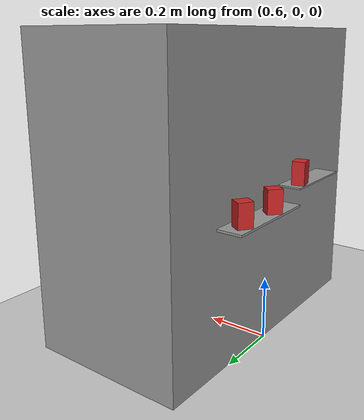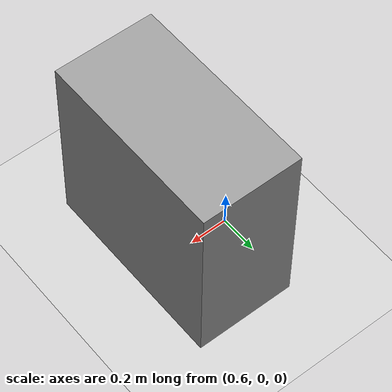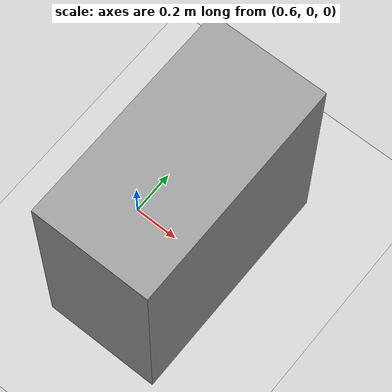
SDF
<sdf version="1.7">
 <world name="default">
  <light name="sun" type="directional">
   <pose>0 0 10 0 -0 0</pose>
   <diffuse>0.8 0.8 0.8 1</diffuse>
   <specular>0.2 0.2 0.2 1</specular>
   <attenuation>
    <range>1000</range>
    <constant>0.9</constant>
    <linear>0.01</linear>
    <quadratic>0.001</quadratic>
   </attenuation>
   <direction>-0.5 0.1 -0.9</direction>
   <spot><inner_angle>0</inner_angle><outer_angle>0</outer_angle><falloff>0</falloff></spot>
  </light>
  <model name="ground_plane">
   <static>1</static>
   <link name="link">
    <collision name="collision">
     <geometry><plane><normal>0 0 1</normal><size>100 100</size></plane></geometry>
     <surface>
      <friction>
       <ode><mu>1e+10</mu><mu2>1e+10</mu2><fdir1>0 0 0</fdir1><slip1>0</slip1><slip2>0</slip2></ode>
       <torsional>
        <coefficient>1</coefficient>
        <patch_radius>0</patch_radius>
        <surface_radius>0</surface_radius>
        <use_patch_radius>1</use_patch_radius>
        <ode><slip>0</slip></ode>
       </torsional>
      </friction>
      <bounce><restitution_coefficient>0</restitution_coefficient><threshold>1e+06</threshold></bounce>
      <contact>
       <collide_without_contact>0</collide_without_contact>
       <collide_without_contact_bitmask>1</collide_without_contact_bitmask>
       <collide_bitmask>1</collide_bitmask>
       <ode>
        <soft_cfm>0</soft_cfm>
        <soft_erp>0.2</soft_erp>
        <kp>1e+13</kp>
        <kd>1e+10</kd>
        <max_vel>0.01</max_vel>
        <min_depth>0</min_depth>
       </ode>
       <bullet>
        <split_impulse>1</split_impulse>
        <split_impulse_penetration_threshold>-0.01</split_impulse_penetration_threshold>
        <soft_cfm>0</soft_cfm>
        <soft_erp>0.2</soft_erp>
        <kp>1e+13</kp>
        <kd>1e+10</kd>
       </bullet>
      </contact>
     </surface>
    </collision>
    <visual name="visual">
     <cast_shadows>0</cast_shadows>
     <geometry><plane><normal>0 0 1</normal><size>100 100</size></plane></geometry>
     <material>
      <script><uri>file://media/materials/scripts/gazebo.material</uri><name>Gazebo/Grey</name></script>
     </material>
    </visual>
   </link>
  </model>
  <gravity>0 0 -9.8</gravity>
  <magnetic_field>6e-06 2.3e-05 -4.2e-05</magnetic_field>
  <atmosphere type="adiabatic"/>
  <physics type="ode">
   <max_step_size>0.001</max_step_size>
   <real_time_factor>1</real_time_factor>
   <real_time_update_rate>1000</real_time_update_rate>
  </physics>
  <scene><ambient>0.4 0.4 0.4 1</ambient><background>0.7 0.7 0.7 1</background><shadows>1</shadows></scene>
  <audio><device>default</device></audio>
  <spherical_coordinates>
   <surface_model>EARTH_WGS84</surface_model>
   <latitude_deg>0</latitude_deg>
   <longitude_deg>0</longitude_deg>
   <elevation>0</elevation>
   <heading_deg>0</heading_deg>
  </spherical_coordinates>
  <light name="user_spot_light_0" type="spot">
   <pose>1.99499 0.217782 1 0 -0 0</pose>
   <diffuse>0.5 0.5 0.5 1</diffuse>
   <specular>0.1 0.1 0.1 1</specular>
   <direction>0 0 -1</direction>
   <attenuation>
    <range>20</range>
    <constant>0.5</constant>
    <linear>0.01</linear>
    <quadratic>0.001</quadratic>
   </attenuation>
   <cast_shadows>0</cast_shadows>
   <spot><inner_angle>0.6</inner_angle><outer_angle>1</outer_angle><falloff>1</falloff></spot>
  </light>
  <model name="grasp_box">
   <link name="grasp_box_base_link">
    <inertial>
     <mass>0.5</mass>
     <inertia>
      <ixx>0.000133333</ixx>
      <ixy>0</ixy>
      <ixz>0</ixz>
      <iyy>0.000133333</iyy>
      <iyz>0</iyz>
      <izz>0.000133333</izz>
     </inertia>
    </inertial>
    <collision name="grasp_box_base_link_collision">
     <geometry><box><size>0.027545 0.0252691 37.5905</size></box></geometry>
     <surface>
      <contact><ode><kp>100000</kp><kd>100</kd></ode></contact>
      <friction><ode><mu>30</mu><mu2>30</mu2></ode></friction>
     </surface>
    </collision>
    <visual name="grasp_box_base_link_visual">
     <geometry><box><size>0.027545 0.0252691 37.5905</size></box></geometry>
     <material>
      <script><name>Gazebo/Red</name><uri>file://media/materials/scripts/gazebo.material</uri></script>
     </material>
    </visual>
   </link>
   <pose>-58.5261 88.5213 -5530.62 -1.57396 0.625441 -0.630015</pose>
  </model>
  <light name="user_spot_light_0_clone" type="spot">
   <pose>-0.182732 0.640576 2 0 -0 0</pose>
   <diffuse>0.498039 0.498039 0.498039 1</diffuse>
   <specular>0.0980392 0.0980392 0.0980392 1</specular>
   <direction>0 0 -1</direction>
   <attenuation>
    <range>20</range>
    <constant>0.5</constant>
    <linear>0.01</linear>
    <quadratic>0.001</quadratic>
   </attenuation>
   <cast_shadows>0</cast_shadows>
   <spot><inner_angle>0.6</inner_angle><outer_angle>1</outer_angle><falloff>1</falloff></spot>
  </light>
  <light name="user_spot_light_0_clone_clone" type="spot">
   <pose>-0.349547 -1.05565 2 0 -0 0</pose>
   <diffuse>0.494118 0.494118 0.494118 1</diffuse>
   <specular>0.0941176 0.0941176 0.0941176 1</specular>
   <direction>0 0 -1</direction>
   <attenuation>
    <range>20</range>
    <constant>0.5</constant>
    <linear>0.01</linear>
    <quadratic>0.001</quadratic>
   </attenuation>
   <cast_shadows>0</cast_shadows>
   <spot><inner_angle>0.6</inner_angle><outer_angle>1</outer_angle><falloff>1</falloff></spot>
  </light>
  <model name="grasp_box_clone">
   <link name="grasp_box_base_link">
    <inertial>
     <mass>0.5</mass>
     <inertia>
      <ixx>0.000133333</ixx>
      <ixy>0</ixy>
      <ixz>0</ixz>
      <iyy>0.000133333</iyy>
      <iyz>0</iyz>
      <izz>0.000133333</izz>
     </inertia>
    </inertial>
    <collision name="grasp_box_base_link_collision">
     <geometry><box><size>0.0415293 0.0762041 0.0470708</size></box></geometry>
     <surface>
      <contact><ode><kp>100000</kp><kd>100</kd></ode></contact>
      <friction><ode><mu>30</mu><mu2>30</mu2></ode></friction>
     </surface>
    </collision>
    <visual name="grasp_box_base_link_visual">
     <geometry><box><size>0.0415293 0.0762041 0.0470708</size></box></geometry>
     <material>
      <script><name>Gazebo/Red</name><uri>file://media/materials/scripts/gazebo.material</uri></script>
     </material>
    </visual>
   </link>
   <pose>0.550863 -0.11735 0.534119 1.5708 0 0.182981</pose>
  </model>
  <model name="wall_dual_done2">
   <link name="link">
    <inertial>
     <mass>1.66022</mass>
     <inertia>
      <ixx>0.0155201</ixx>
      <ixy>0</ixy>
      <ixz>0</ixz>
      <iyy>0.0162504</iyy>
      <iyz>0</iyz>
      <izz>0.0317568</izz>
     </inertia>
    </inertial>
    <pose>-0.034223 0.074592 -0.031042 0 -0 0</pose>
    <visual name="visual">
     <geometry><box><size>0.342648 0.334857 0.007025</size></box></geometry>
     <material>
      <script><name>Gazebo/Grey</name><uri>file://media/materials/scripts/gazebo.material</uri></script>
      <shader type="pixel"><normal_map>__default__</normal_map></shader>
      <emissive>0 0 0 1</emissive>
      <ambient>0.3 0.3 0.3 1</ambient>
      <diffuse>0.7 0.7 0.7 1</diffuse>
      <specular>0.01 0.01 0.01 1</specular>
     </material>
    </visual>
    <collision name="collision">
     <geometry><box><size>0.342648 0.334857 0.007025</size></box></geometry>
     <surface>
      <friction>
       <ode><mu>1</mu><mu2>1</mu2><fdir1>0 0 0</fdir1><slip1>0</slip1><slip2>0</slip2></ode>
       <torsional>
        <coefficient>1</coefficient>
        <patch_radius>0</patch_radius>
        <surface_radius>0</surface_radius>
        <use_patch_radius>1</use_patch_radius>
        <ode><slip>0</slip></ode>
       </torsional>
      </friction>
      <bounce><restitution_coefficient>0</restitution_coefficient><threshold>1e+06</threshold></bounce>
      <contact>
       <collide_without_contact>0</collide_without_contact>
       <collide_without_contact_bitmask>1</collide_without_contact_bitmask>
       <collide_bitmask>1</collide_bitmask>
       <ode>
        <soft_cfm>0</soft_cfm>
        <soft_erp>0.2</soft_erp>
        <kp>1e+13</kp>
        <kd>1</kd>
        <max_vel>0.01</max_vel>
        <min_depth>0</min_depth>
       </ode>
       <bullet>
        <split_impulse>1</split_impulse>
        <split_impulse_penetration_threshold>-0.01</split_impulse_penetration_threshold>
        <soft_cfm>0</soft_cfm>
        <soft_erp>0.2</soft_erp>
        <kp>1e+13</kp>
        <kd>1</kd>
       </bullet>
      </contact>
     </surface>
    </collision>
   </link>
   <link name="link_0">
    <inertial>
     <mass>12.7747</mass>
     <inertia><ixx>2.0783</ixx><ixy>0</ixy><ixz>0</ixz><iyy>1.29891</iyy><iyz>0</iyz><izz>1.34973</izz></inertia>
    </inertial>
    <pose>0.13408 -0.064661 0.014758 0 -0 0</pose>
    <visual name="visual">
     <geometry><box><size>0.51757 1 0.975838</size></box></geometry>
     <material>
      <lighting>1</lighting>
      <script><uri>file://media/materials/scripts/gazebo.material</uri><name>Gazebo/Grey</name></script>
      <shader type="pixel"><normal_map>__default__</normal_map></shader>
      <emissive>0 0 0 1</emissive>
      <ambient>0.3 0.3 0.3 1</ambient>
      <diffuse>0.7 0.7 0.7 1</diffuse>
      <specular>0.01 0.01 0.01 1</specular>
     </material>
    </visual>
    <collision name="collision">
     <geometry><box><size>0.51757 1 0.975838</size></box></geometry>
     <surface>
      <friction>
       <ode><mu>1</mu><mu2>1</mu2><fdir1>0 0 0</fdir1><slip1>0</slip1><slip2>0</slip2></ode>
       <torsional>
        <coefficient>1</coefficient>
        <patch_radius>0</patch_radius>
        <surface_radius>0</surface_radius>
        <use_patch_radius>1</use_patch_radius>
        <ode><slip>0</slip></ode>
       </torsional>
      </friction>
      <bounce><restitution_coefficient>0</restitution_coefficient><threshold>1e+06</threshold></bounce>
      <contact>
       <collide_without_contact>0</collide_without_contact>
       <collide_without_contact_bitmask>1</collide_without_contact_bitmask>
       <collide_bitmask>1</collide_bitmask>
       <ode>
        <soft_cfm>0</soft_cfm>
        <soft_erp>0.2</soft_erp>
        <kp>1e+13</kp>
        <kd>1</kd>
        <max_vel>0.01</max_vel>
        <min_depth>0</min_depth>
       </ode>
       <bullet>
        <split_impulse>1</split_impulse>
        <split_impulse_penetration_threshold>-0.01</split_impulse_penetration_threshold>
        <soft_cfm>0</soft_cfm>
        <soft_erp>0.2</soft_erp>
        <kp>1e+13</kp>
        <kd>1</kd>
       </bullet>
      </contact>
     </surface>
    </collision>
   </link>
   <link name="link_clone">
    <inertial>
     <mass>0.985526</mass>
     <inertia>
      <ixx>0.00608208</ixx>
      <ixy>0</ixy>
      <ixz>0</ixz>
      <iyy>0.00964446</iyy>
      <iyz>0</iyz>
      <izz>0.0157223</izz>
     </inertia>
    </inertial>
    <pose>-0.029908 -0.232803 0.020344 -4e-06 -2e-06 -0</pose>
    <visual name="visual">
     <geometry><box><size>0.342648 0.272087 0.005049</size></box></geometry>
     <material>
      <script><name>Gazebo/Grey</name><uri>file://media/materials/scripts/gazebo.material</uri></script>
      <shader type="pixel"><normal_map>__default__</normal_map></shader>
      <emissive>0 0 0 1</emissive>
      <ambient>0.3 0.3 0.3 1</ambient>
      <diffuse>0.7 0.7 0.7 1</diffuse>
      <specular>0.01 0.01 0.01 1</specular>
     </material>
    </visual>
    <collision name="collision">
     <geometry><box><size>0.342648 0.272087 0.005049</size></box></geometry>
     <surface>
      <friction>
       <ode><mu>1</mu><mu2>1</mu2><fdir1>0 0 0</fdir1><slip1>0</slip1><slip2>0</slip2></ode>
       <torsional>
        <coefficient>1</coefficient>
        <patch_radius>0</patch_radius>
        <surface_radius>0</surface_radius>
        <use_patch_radius>1</use_patch_radius>
        <ode><slip>0</slip></ode>
       </torsional>
      </friction>
      <bounce><restitution_coefficient>0</restitution_coefficient><threshold>1e+06</threshold></bounce>
      <contact>
       <collide_without_contact>0</collide_without_contact>
       <collide_without_contact_bitmask>1</collide_without_contact_bitmask>
       <collide_bitmask>1</collide_bitmask>
       <ode>
        <soft_cfm>0</soft_cfm>
        <soft_erp>0.2</soft_erp>
        <kp>1e+13</kp>
        <kd>1</kd>
        <max_vel>0.01</max_vel>
        <min_depth>0</min_depth>
       </ode>
       <bullet>
        <split_impulse>1</split_impulse>
        <split_impulse_penetration_threshold>-0.01</split_impulse_penetration_threshold>
        <soft_cfm>0</soft_cfm>
        <soft_erp>0.2</soft_erp>
        <kp>1e+13</kp>
        <kd>1</kd>
       </bullet>
      </contact>
     </surface>
    </collision>
   </link>
   <joint name="link_0_JOINT_0_0" type="fixed">
    <parent>link_0</parent>
    <child>link_clone</child>
    <physics>
     <ode><limit><cfm>0</cfm><erp>0.2</erp></limit><suspension><cfm>0</cfm><erp>0.2</erp></suspension></ode>
    </physics>
   </joint>
   <joint name="link_0_JOINT_0" type="fixed">
    <parent>link_0</parent>
    <child>link</child>
    <physics>
     <ode><limit><cfm>0</cfm><erp>0.2</erp></limit><suspension><cfm>0</cfm><erp>0.2</erp></suspension></ode>
    </physics>
   </joint>
   <static>1</static>
   <pose>0.726673 0.025405 0.473161 4e-06 2e-06 -0</pose>
  </model>
  <model name="grasp_box_clone_clone">
   <link name="grasp_box_base_link">
    <inertial>
     <mass>0.5</mass>
     <inertia>
      <ixx>0.000133333</ixx>
      <ixy>0</ixy>
      <ixz>0</ixz>
      <iyy>0.000133333</iyy>
      <iyz>0</iyz>
      <izz>0.000133333</izz>
     </inertia>
    </inertial>
    <collision name="grasp_box_base_link_collision">
     <geometry><box><size>0.041529 0.076204 0.047071</size></box></geometry>
     <surface>
      <contact><ode><kp>100000</kp><kd>100</kd></ode></contact>
      <friction><ode><mu>30</mu><mu2>30</mu2></ode></friction>
     </surface>
    </collision>
    <visual name="grasp_box_base_link_visual">
     <geometry><box><size>0.041529 0.076204 0.047071</size></box></geometry>
     <material>
      <script><name>Gazebo/Red</name><uri>file://media/materials/scripts/gazebo.material</uri></script>
     </material>
    </visual>
   </link>
   <pose>0.553123 0.213576 0.483722 1.5708 4e-06 -0.580399</pose>
  </model>
  <model name="grasp_box_clone_clone_0">
   <link name="grasp_box_base_link">
    <inertial>
     <mass>0.5</mass>
     <inertia>
      <ixx>0.000133333</ixx>
      <ixy>0</ixy>
      <ixz>0</ixz>
      <iyy>0.000133333</iyy>
      <iyz>0</iyz>
      <izz>0.000133333</izz>
     </inertia>
    </inertial>
    <collision name="grasp_box_base_link_collision">
     <geometry><box><size>0.041529 0.076204 0.047071</size></box></geometry>
     <surface>
      <contact><ode><kp>100000</kp><kd>100</kd></ode></contact>
      <friction><ode><mu>30</mu><mu2>30</mu2></ode></friction>
     </surface>
    </collision>
    <visual name="grasp_box_base_link_visual">
     <geometry><box><size>0.041529 0.076204 0.047071</size></box></geometry>
     <material>
      <script><name>Gazebo/Red</name><uri>file://media/materials/scripts/gazebo.material</uri></script>
     </material>
    </visual>
   </link>
   <pose>0.550981 0.051987 0.483723 1.57073 8.5e-05 -0.72865</pose>
  </model>
 </world>
</sdf>
